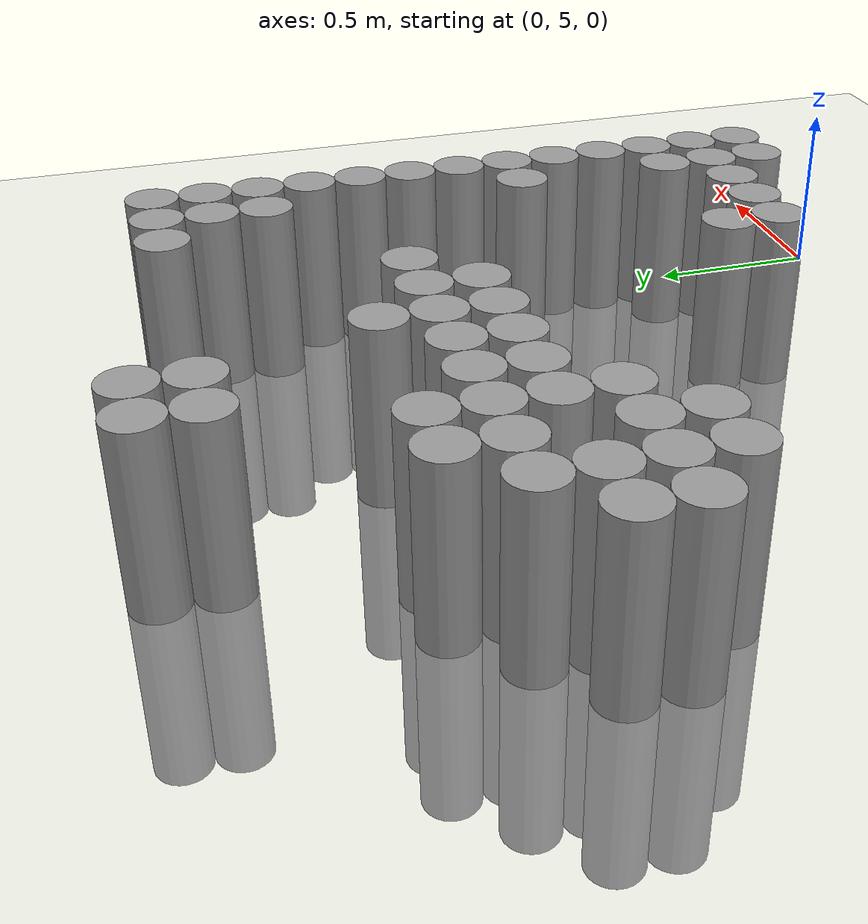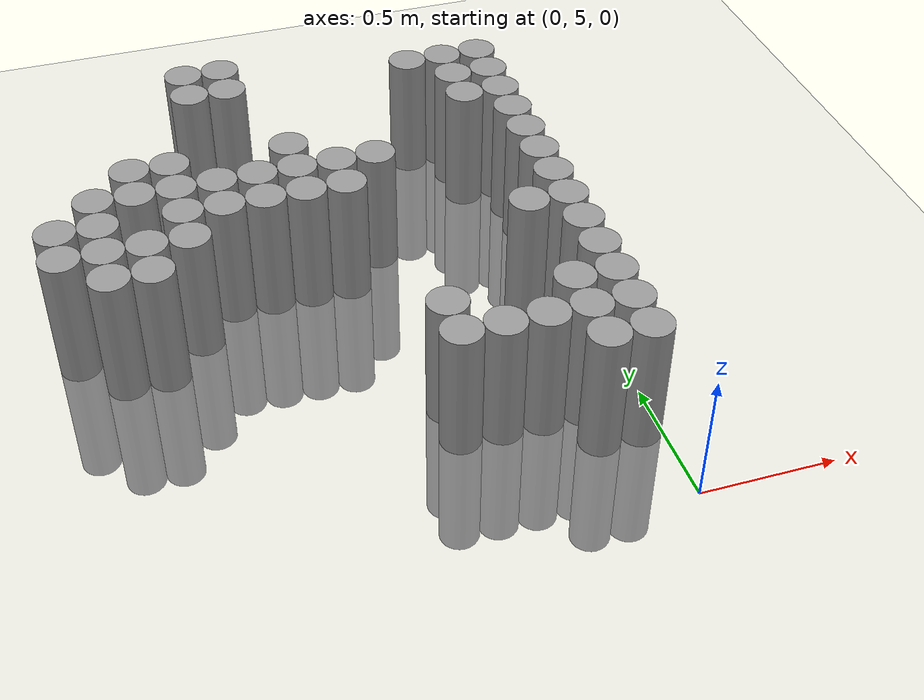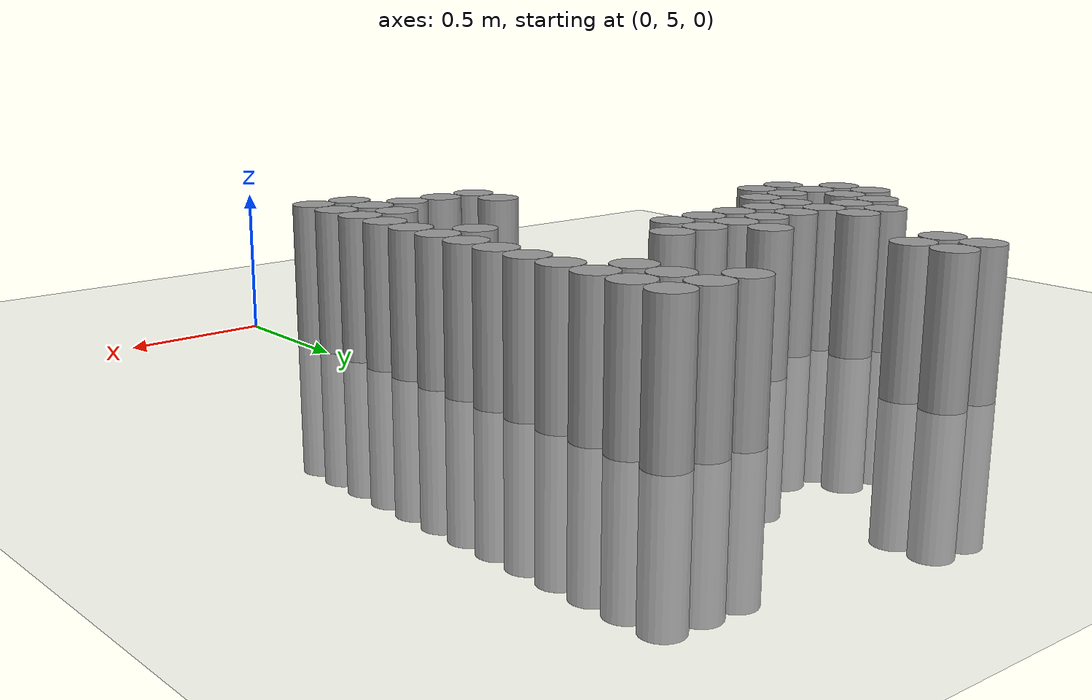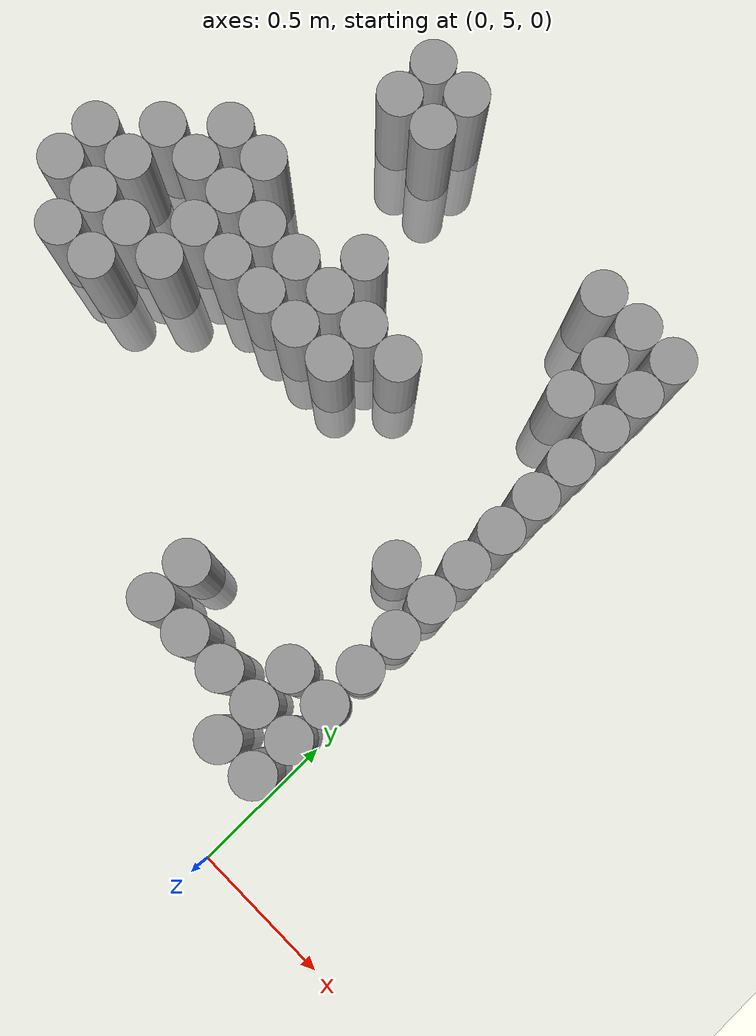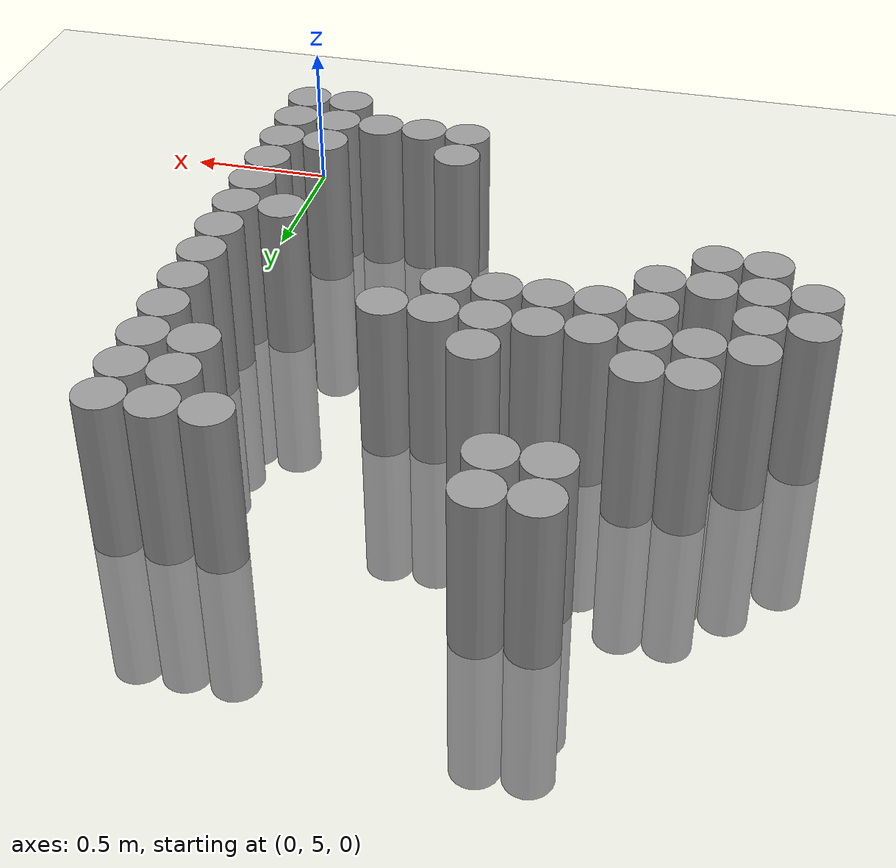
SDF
<sdf version="1.6">
 <world name="default">
  <model name="ground_plane">
   <static>1</static>
   <link name="link">
    <collision name="collision">
     <geometry><plane><normal>0 0 1</normal><size>100 100</size></plane></geometry>
     <surface><friction><ode><mu>100</mu><mu2>50</mu2></ode></friction></surface>
    </collision>
    <visual name="visual">
     <cast_shadows>0</cast_shadows>
     <geometry><plane><normal>0 0 1</normal><size>100 100</size></plane></geometry>
     <material>
      <script><uri>file://media/materials/scripts/gazebo.material</uri><name>Gazebo/Grey</name></script>
     </material>
    </visual>
   </link>
  </model>
  <model name="unit_cylinder_159">
   <pose>-1.875000 6.225000 0.000000 0.000000 0.000000 0.000000</pose>
   <link name="link">
    <inertial>
     <mass>1</mass>
     <inertia><ixx>0.145833</ixx><ixy>0</ixy><ixz>0</ixz><iyy>0.145833</iyy><iyz>0</iyz><izz>0.125</izz></inertia>
    </inertial>
    <collision name="collision">
     <geometry><cylinder><radius>0.075000</radius><length>1</length></cylinder></geometry>
    </collision>
    <visual name="visual">
     <geometry><cylinder><radius>0.075000</radius><length>1</length></cylinder></geometry>
     <material>
      <script><name>Gazebo/Grey</name><uri>file://media/materials/scripts/gazebo.material</uri></script>
     </material>
    </visual>
   </link>
  </model>
  <model name="unit_cylinder_160">
   <pose>-1.875000 6.375000 0.000000 0.000000 0.000000 0.000000</pose>
   <link name="link">
    <inertial>
     <mass>1</mass>
     <inertia><ixx>0.145833</ixx><ixy>0</ixy><ixz>0</ixz><iyy>0.145833</iyy><iyz>0</iyz><izz>0.125</izz></inertia>
    </inertial>
    <collision name="collision">
     <geometry><cylinder><radius>0.075000</radius><length>1</length></cylinder></geometry>
    </collision>
    <visual name="visual">
     <geometry><cylinder><radius>0.075000</radius><length>1</length></cylinder></geometry>
     <material>
      <script><name>Gazebo/Grey</name><uri>file://media/materials/scripts/gazebo.material</uri></script>
     </material>
    </visual>
   </link>
  </model>
  <model name="unit_cylinder_162">
   <pose>-1.725000 6.075000 0.000000 0.000000 0.000000 0.000000</pose>
   <link name="link">
    <inertial>
     <mass>1</mass>
     <inertia><ixx>0.145833</ixx><ixy>0</ixy><ixz>0</ixz><iyy>0.145833</iyy><iyz>0</iyz><izz>0.125</izz></inertia>
    </inertial>
    <collision name="collision">
     <geometry><cylinder><radius>0.075000</radius><length>1</length></cylinder></geometry>
    </collision>
    <visual name="visual">
     <geometry><cylinder><radius>0.075000</radius><length>1</length></cylinder></geometry>
     <material>
      <script><name>Gazebo/Grey</name><uri>file://media/materials/scripts/gazebo.material</uri></script>
     </material>
    </visual>
   </link>
  </model>
  <model name="unit_cylinder_163">
   <pose>-1.725000 6.225000 0.000000 0.000000 0.000000 0.000000</pose>
   <link name="link">
    <inertial>
     <mass>1</mass>
     <inertia><ixx>0.145833</ixx><ixy>0</ixy><ixz>0</ixz><iyy>0.145833</iyy><iyz>0</iyz><izz>0.125</izz></inertia>
    </inertial>
    <collision name="collision">
     <geometry><cylinder><radius>0.075000</radius><length>1</length></cylinder></geometry>
    </collision>
    <visual name="visual">
     <geometry><cylinder><radius>0.075000</radius><length>1</length></cylinder></geometry>
     <material>
      <script><name>Gazebo/Grey</name><uri>file://media/materials/scripts/gazebo.material</uri></script>
     </material>
    </visual>
   </link>
  </model>
  <model name="unit_cylinder_164">
   <pose>-1.725000 6.375000 0.000000 0.000000 0.000000 0.000000</pose>
   <link name="link">
    <inertial>
     <mass>1</mass>
     <inertia><ixx>0.145833</ixx><ixy>0</ixy><ixz>0</ixz><iyy>0.145833</iyy><iyz>0</iyz><izz>0.125</izz></inertia>
    </inertial>
    <collision name="collision">
     <geometry><cylinder><radius>0.075000</radius><length>1</length></cylinder></geometry>
    </collision>
    <visual name="visual">
     <geometry><cylinder><radius>0.075000</radius><length>1</length></cylinder></geometry>
     <material>
      <script><name>Gazebo/Grey</name><uri>file://media/materials/scripts/gazebo.material</uri></script>
     </material>
    </visual>
   </link>
  </model>
  <model name="unit_cylinder_165">
   <pose>-1.725000 6.525000 0.000000 0.000000 0.000000 0.000000</pose>
   <link name="link">
    <inertial>
     <mass>1</mass>
     <inertia><ixx>0.145833</ixx><ixy>0</ixy><ixz>0</ixz><iyy>0.145833</iyy><iyz>0</iyz><izz>0.125</izz></inertia>
    </inertial>
    <collision name="collision">
     <geometry><cylinder><radius>0.075000</radius><length>1</length></cylinder></geometry>
    </collision>
    <visual name="visual">
     <geometry><cylinder><radius>0.075000</radius><length>1</length></cylinder></geometry>
     <material>
      <script><name>Gazebo/Grey</name><uri>file://media/materials/scripts/gazebo.material</uri></script>
     </material>
    </visual>
   </link>
  </model>
  <model name="unit_cylinder_166">
   <pose>-1.575000 6.075000 0.000000 0.000000 0.000000 0.000000</pose>
   <link name="link">
    <inertial>
     <mass>1</mass>
     <inertia><ixx>0.145833</ixx><ixy>0</ixy><ixz>0</ixz><iyy>0.145833</iyy><iyz>0</iyz><izz>0.125</izz></inertia>
    </inertial>
    <collision name="collision">
     <geometry><cylinder><radius>0.075000</radius><length>1</length></cylinder></geometry>
    </collision>
    <visual name="visual">
     <geometry><cylinder><radius>0.075000</radius><length>1</length></cylinder></geometry>
     <material>
      <script><name>Gazebo/Grey</name><uri>file://media/materials/scripts/gazebo.material</uri></script>
     </material>
    </visual>
   </link>
  </model>
  <model name="unit_cylinder_167">
   <pose>-1.575000 6.225000 0.000000 0.000000 0.000000 0.000000</pose>
   <link name="link">
    <inertial>
     <mass>1</mass>
     <inertia><ixx>0.145833</ixx><ixy>0</ixy><ixz>0</ixz><iyy>0.145833</iyy><iyz>0</iyz><izz>0.125</izz></inertia>
    </inertial>
    <collision name="collision">
     <geometry><cylinder><radius>0.075000</radius><length>1</length></cylinder></geometry>
    </collision>
    <visual name="visual">
     <geometry><cylinder><radius>0.075000</radius><length>1</length></cylinder></geometry>
     <material>
      <script><name>Gazebo/Grey</name><uri>file://media/materials/scripts/gazebo.material</uri></script>
     </material>
    </visual>
   </link>
  </model>
  <model name="unit_cylinder_168">
   <pose>-1.575000 6.525000 0.000000 0.000000 0.000000 0.000000</pose>
   <link name="link">
    <inertial>
     <mass>1</mass>
     <inertia><ixx>0.145833</ixx><ixy>0</ixy><ixz>0</ixz><iyy>0.145833</iyy><iyz>0</iyz><izz>0.125</izz></inertia>
    </inertial>
    <collision name="collision">
     <geometry><cylinder><radius>0.075000</radius><length>1</length></cylinder></geometry>
    </collision>
    <visual name="visual">
     <geometry><cylinder><radius>0.075000</radius><length>1</length></cylinder></geometry>
     <material>
      <script><name>Gazebo/Grey</name><uri>file://media/materials/scripts/gazebo.material</uri></script>
     </material>
    </visual>
   </link>
  </model>
  <model name="unit_cylinder_169">
   <pose>-1.575000 6.675000 0.000000 0.000000 0.000000 0.000000</pose>
   <link name="link">
    <inertial>
     <mass>1</mass>
     <inertia><ixx>0.145833</ixx><ixy>0</ixy><ixz>0</ixz><iyy>0.145833</iyy><iyz>0</iyz><izz>0.125</izz></inertia>
    </inertial>
    <collision name="collision">
     <geometry><cylinder><radius>0.075000</radius><length>1</length></cylinder></geometry>
    </collision>
    <visual name="visual">
     <geometry><cylinder><radius>0.075000</radius><length>1</length></cylinder></geometry>
     <material>
      <script><name>Gazebo/Grey</name><uri>file://media/materials/scripts/gazebo.material</uri></script>
     </material>
    </visual>
   </link>
  </model>
  <model name="unit_cylinder_171">
   <pose>-1.425000 6.225000 0.000000 0.000000 0.000000 0.000000</pose>
   <link name="link">
    <inertial>
     <mass>1</mass>
     <inertia><ixx>0.145833</ixx><ixy>0</ixy><ixz>0</ixz><iyy>0.145833</iyy><iyz>0</iyz><izz>0.125</izz></inertia>
    </inertial>
    <collision name="collision">
     <geometry><cylinder><radius>0.075000</radius><length>1</length></cylinder></geometry>
    </collision>
    <visual name="visual">
     <geometry><cylinder><radius>0.075000</radius><length>1</length></cylinder></geometry>
     <material>
      <script><name>Gazebo/Grey</name><uri>file://media/materials/scripts/gazebo.material</uri></script>
     </material>
    </visual>
   </link>
  </model>
  <model name="unit_cylinder_172">
   <pose>-1.425000 6.375000 0.000000 0.000000 0.000000 0.000000</pose>
   <link name="link">
    <inertial>
     <mass>1</mass>
     <inertia><ixx>0.145833</ixx><ixy>0</ixy><ixz>0</ixz><iyy>0.145833</iyy><iyz>0</iyz><izz>0.125</izz></inertia>
    </inertial>
    <collision name="collision">
     <geometry><cylinder><radius>0.075000</radius><length>1</length></cylinder></geometry>
    </collision>
    <visual name="visual">
     <geometry><cylinder><radius>0.075000</radius><length>1</length></cylinder></geometry>
     <material>
      <script><name>Gazebo/Grey</name><uri>file://media/materials/scripts/gazebo.material</uri></script>
     </material>
    </visual>
   </link>
  </model>
  <model name="unit_cylinder_173">
   <pose>-1.425000 6.525000 0.000000 0.000000 0.000000 0.000000</pose>
   <link name="link">
    <inertial>
     <mass>1</mass>
     <inertia><ixx>0.145833</ixx><ixy>0</ixy><ixz>0</ixz><iyy>0.145833</iyy><iyz>0</iyz><izz>0.125</izz></inertia>
    </inertial>
    <collision name="collision">
     <geometry><cylinder><radius>0.075000</radius><length>1</length></cylinder></geometry>
    </collision>
    <visual name="visual">
     <geometry><cylinder><radius>0.075000</radius><length>1</length></cylinder></geometry>
     <material>
      <script><name>Gazebo/Grey</name><uri>file://media/materials/scripts/gazebo.material</uri></script>
     </material>
    </visual>
   </link>
  </model>
  <model name="unit_cylinder_174">
   <pose>-1.425000 6.675000 0.000000 0.000000 0.000000 0.000000</pose>
   <link name="link">
    <inertial>
     <mass>1</mass>
     <inertia><ixx>0.145833</ixx><ixy>0</ixy><ixz>0</ixz><iyy>0.145833</iyy><iyz>0</iyz><izz>0.125</izz></inertia>
    </inertial>
    <collision name="collision">
     <geometry><cylinder><radius>0.075000</radius><length>1</length></cylinder></geometry>
    </collision>
    <visual name="visual">
     <geometry><cylinder><radius>0.075000</radius><length>1</length></cylinder></geometry>
     <material>
      <script><name>Gazebo/Grey</name><uri>file://media/materials/scripts/gazebo.material</uri></script>
     </material>
    </visual>
   </link>
  </model>
  <model name="unit_cylinder_179">
   <pose>-1.275000 6.375000 0.000000 0.000000 0.000000 0.000000</pose>
   <link name="link">
    <inertial>
     <mass>1</mass>
     <inertia><ixx>0.145833</ixx><ixy>0</ixy><ixz>0</ixz><iyy>0.145833</iyy><iyz>0</iyz><izz>0.125</izz></inertia>
    </inertial>
    <collision name="collision">
     <geometry><cylinder><radius>0.075000</radius><length>1</length></cylinder></geometry>
    </collision>
    <visual name="visual">
     <geometry><cylinder><radius>0.075000</radius><length>1</length></cylinder></geometry>
     <material>
      <script><name>Gazebo/Grey</name><uri>file://media/materials/scripts/gazebo.material</uri></script>
     </material>
    </visual>
   </link>
  </model>
  <model name="unit_cylinder_180">
   <pose>-1.275000 6.525000 0.000000 0.000000 0.000000 0.000000</pose>
   <link name="link">
    <inertial>
     <mass>1</mass>
     <inertia><ixx>0.145833</ixx><ixy>0</ixy><ixz>0</ixz><iyy>0.145833</iyy><iyz>0</iyz><izz>0.125</izz></inertia>
    </inertial>
    <collision name="collision">
     <geometry><cylinder><radius>0.075000</radius><length>1</length></cylinder></geometry>
    </collision>
    <visual name="visual">
     <geometry><cylinder><radius>0.075000</radius><length>1</length></cylinder></geometry>
     <material>
      <script><name>Gazebo/Grey</name><uri>file://media/materials/scripts/gazebo.material</uri></script>
     </material>
    </visual>
   </link>
  </model>
  <model name="unit_cylinder_181">
   <pose>-1.275000 7.125000 0.000000 0.000000 0.000000 0.000000</pose>
   <link name="link">
    <inertial>
     <mass>1</mass>
     <inertia><ixx>0.145833</ixx><ixy>0</ixy><ixz>0</ixz><iyy>0.145833</iyy><iyz>0</iyz><izz>0.125</izz></inertia>
    </inertial>
    <collision name="collision">
     <geometry><cylinder><radius>0.075000</radius><length>1</length></cylinder></geometry>
    </collision>
    <visual name="visual">
     <geometry><cylinder><radius>0.075000</radius><length>1</length></cylinder></geometry>
     <material>
      <script><name>Gazebo/Grey</name><uri>file://media/materials/scripts/gazebo.material</uri></script>
     </material>
    </visual>
   </link>
  </model>
  <model name="unit_cylinder_182">
   <pose>-1.275000 7.275000 0.000000 0.000000 0.000000 0.000000</pose>
   <link name="link">
    <inertial>
     <mass>1</mass>
     <inertia><ixx>0.145833</ixx><ixy>0</ixy><ixz>0</ixz><iyy>0.145833</iyy><iyz>0</iyz><izz>0.125</izz></inertia>
    </inertial>
    <collision name="collision">
     <geometry><cylinder><radius>0.075000</radius><length>1</length></cylinder></geometry>
    </collision>
    <visual name="visual">
     <geometry><cylinder><radius>0.075000</radius><length>1</length></cylinder></geometry>
     <material>
      <script><name>Gazebo/Grey</name><uri>file://media/materials/scripts/gazebo.material</uri></script>
     </material>
    </visual>
   </link>
  </model>
  <model name="unit_cylinder_186">
   <pose>-1.125000 6.375000 0.000000 0.000000 0.000000 0.000000</pose>
   <link name="link">
    <inertial>
     <mass>1</mass>
     <inertia><ixx>0.145833</ixx><ixy>0</ixy><ixz>0</ixz><iyy>0.145833</iyy><iyz>0</iyz><izz>0.125</izz></inertia>
    </inertial>
    <collision name="collision">
     <geometry><cylinder><radius>0.075000</radius><length>1</length></cylinder></geometry>
    </collision>
    <visual name="visual">
     <geometry><cylinder><radius>0.075000</radius><length>1</length></cylinder></geometry>
     <material>
      <script><name>Gazebo/Grey</name><uri>file://media/materials/scripts/gazebo.material</uri></script>
     </material>
    </visual>
   </link>
  </model>
  <model name="unit_cylinder_187">
   <pose>-1.125000 6.525000 0.000000 0.000000 0.000000 0.000000</pose>
   <link name="link">
    <inertial>
     <mass>1</mass>
     <inertia><ixx>0.145833</ixx><ixy>0</ixy><ixz>0</ixz><iyy>0.145833</iyy><iyz>0</iyz><izz>0.125</izz></inertia>
    </inertial>
    <collision name="collision">
     <geometry><cylinder><radius>0.075000</radius><length>1</length></cylinder></geometry>
    </collision>
    <visual name="visual">
     <geometry><cylinder><radius>0.075000</radius><length>1</length></cylinder></geometry>
     <material>
      <script><name>Gazebo/Grey</name><uri>file://media/materials/scripts/gazebo.material</uri></script>
     </material>
    </visual>
   </link>
  </model>
  <model name="unit_cylinder_188">
   <pose>-1.125000 7.125000 0.000000 0.000000 0.000000 0.000000</pose>
   <link name="link">
    <inertial>
     <mass>1</mass>
     <inertia><ixx>0.145833</ixx><ixy>0</ixy><ixz>0</ixz><iyy>0.145833</iyy><iyz>0</iyz><izz>0.125</izz></inertia>
    </inertial>
    <collision name="collision">
     <geometry><cylinder><radius>0.075000</radius><length>1</length></cylinder></geometry>
    </collision>
    <visual name="visual">
     <geometry><cylinder><radius>0.075000</radius><length>1</length></cylinder></geometry>
     <material>
      <script><name>Gazebo/Grey</name><uri>file://media/materials/scripts/gazebo.material</uri></script>
     </material>
    </visual>
   </link>
  </model>
  <model name="unit_cylinder_189">
   <pose>-1.125000 7.275000 0.000000 0.000000 0.000000 0.000000</pose>
   <link name="link">
    <inertial>
     <mass>1</mass>
     <inertia><ixx>0.145833</ixx><ixy>0</ixy><ixz>0</ixz><iyy>0.145833</iyy><iyz>0</iyz><izz>0.125</izz></inertia>
    </inertial>
    <collision name="collision">
     <geometry><cylinder><radius>0.075000</radius><length>1</length></cylinder></geometry>
    </collision>
    <visual name="visual">
     <geometry><cylinder><radius>0.075000</radius><length>1</length></cylinder></geometry>
     <material>
      <script><name>Gazebo/Grey</name><uri>file://media/materials/scripts/gazebo.material</uri></script>
     </material>
    </visual>
   </link>
  </model>
  <model name="unit_cylinder_193">
   <pose>-0.975000 6.375000 0.000000 0.000000 0.000000 0.000000</pose>
   <link name="link">
    <inertial>
     <mass>1</mass>
     <inertia><ixx>0.145833</ixx><ixy>0</ixy><ixz>0</ixz><iyy>0.145833</iyy><iyz>0</iyz><izz>0.125</izz></inertia>
    </inertial>
    <collision name="collision">
     <geometry><cylinder><radius>0.075000</radius><length>1</length></cylinder></geometry>
    </collision>
    <visual name="visual">
     <geometry><cylinder><radius>0.075000</radius><length>1</length></cylinder></geometry>
     <material>
      <script><name>Gazebo/Grey</name><uri>file://media/materials/scripts/gazebo.material</uri></script>
     </material>
    </visual>
   </link>
  </model>
  <model name="unit_cylinder_194">
   <pose>-0.975000 6.525000 0.000000 0.000000 0.000000 0.000000</pose>
   <link name="link">
    <inertial>
     <mass>1</mass>
     <inertia><ixx>0.145833</ixx><ixy>0</ixy><ixz>0</ixz><iyy>0.145833</iyy><iyz>0</iyz><izz>0.125</izz></inertia>
    </inertial>
    <collision name="collision">
     <geometry><cylinder><radius>0.075000</radius><length>1</length></cylinder></geometry>
    </collision>
    <visual name="visual">
     <geometry><cylinder><radius>0.075000</radius><length>1</length></cylinder></geometry>
     <material>
      <script><name>Gazebo/Grey</name><uri>file://media/materials/scripts/gazebo.material</uri></script>
     </material>
    </visual>
   </link>
  </model>
  <model name="unit_cylinder_195">
   <pose>-0.975000 6.675000 0.000000 0.000000 0.000000 0.000000</pose>
   <link name="link">
    <inertial>
     <mass>1</mass>
     <inertia><ixx>0.145833</ixx><ixy>0</ixy><ixz>0</ixz><iyy>0.145833</iyy><iyz>0</iyz><izz>0.125</izz></inertia>
    </inertial>
    <collision name="collision">
     <geometry><cylinder><radius>0.075000</radius><length>1</length></cylinder></geometry>
    </collision>
    <visual name="visual">
     <geometry><cylinder><radius>0.075000</radius><length>1</length></cylinder></geometry>
     <material>
      <script><name>Gazebo/Grey</name><uri>file://media/materials/scripts/gazebo.material</uri></script>
     </material>
    </visual>
   </link>
  </model>
  <model name="unit_cylinder_200">
   <pose>-0.825000 6.375000 0.000000 0.000000 0.000000 0.000000</pose>
   <link name="link">
    <inertial>
     <mass>1</mass>
     <inertia><ixx>0.145833</ixx><ixy>0</ixy><ixz>0</ixz><iyy>0.145833</iyy><iyz>0</iyz><izz>0.125</izz></inertia>
    </inertial>
    <collision name="collision">
     <geometry><cylinder><radius>0.075000</radius><length>1</length></cylinder></geometry>
    </collision>
    <visual name="visual">
     <geometry><cylinder><radius>0.075000</radius><length>1</length></cylinder></geometry>
     <material>
      <script><name>Gazebo/Grey</name><uri>file://media/materials/scripts/gazebo.material</uri></script>
     </material>
    </visual>
   </link>
  </model>
  <model name="unit_cylinder_201">
   <pose>-0.825000 6.525000 0.000000 0.000000 0.000000 0.000000</pose>
   <link name="link">
    <inertial>
     <mass>1</mass>
     <inertia><ixx>0.145833</ixx><ixy>0</ixy><ixz>0</ixz><iyy>0.145833</iyy><iyz>0</iyz><izz>0.125</izz></inertia>
    </inertial>
    <collision name="collision">
     <geometry><cylinder><radius>0.075000</radius><length>1</length></cylinder></geometry>
    </collision>
    <visual name="visual">
     <geometry><cylinder><radius>0.075000</radius><length>1</length></cylinder></geometry>
     <material>
      <script><name>Gazebo/Grey</name><uri>file://media/materials/scripts/gazebo.material</uri></script>
     </material>
    </visual>
   </link>
  </model>
  <model name="unit_cylinder_206">
   <pose>-0.675000 5.475000 0.000000 0.000000 0.000000 0.000000</pose>
   <link name="link">
    <inertial>
     <mass>1</mass>
     <inertia><ixx>0.145833</ixx><ixy>0</ixy><ixz>0</ixz><iyy>0.145833</iyy><iyz>0</iyz><izz>0.125</izz></inertia>
    </inertial>
    <collision name="collision">
     <geometry><cylinder><radius>0.075000</radius><length>1</length></cylinder></geometry>
    </collision>
    <visual name="visual">
     <geometry><cylinder><radius>0.075000</radius><length>1</length></cylinder></geometry>
     <material>
      <script><name>Gazebo/Grey</name><uri>file://media/materials/scripts/gazebo.material</uri></script>
     </material>
    </visual>
   </link>
  </model>
  <model name="unit_cylinder_207">
   <pose>-0.675000 5.625000 0.000000 0.000000 0.000000 0.000000</pose>
   <link name="link">
    <inertial>
     <mass>1</mass>
     <inertia><ixx>0.145833</ixx><ixy>0</ixy><ixz>0</ixz><iyy>0.145833</iyy><iyz>0</iyz><izz>0.125</izz></inertia>
    </inertial>
    <collision name="collision">
     <geometry><cylinder><radius>0.075000</radius><length>1</length></cylinder></geometry>
    </collision>
    <visual name="visual">
     <geometry><cylinder><radius>0.075000</radius><length>1</length></cylinder></geometry>
     <material>
      <script><name>Gazebo/Grey</name><uri>file://media/materials/scripts/gazebo.material</uri></script>
     </material>
    </visual>
   </link>
  </model>
  <model name="unit_cylinder_208">
   <pose>-0.675000 6.525000 0.000000 0.000000 0.000000 0.000000</pose>
   <link name="link">
    <inertial>
     <mass>1</mass>
     <inertia><ixx>0.145833</ixx><ixy>0</ixy><ixz>0</ixz><iyy>0.145833</iyy><iyz>0</iyz><izz>0.125</izz></inertia>
    </inertial>
    <collision name="collision">
     <geometry><cylinder><radius>0.075000</radius><length>1</length></cylinder></geometry>
    </collision>
    <visual name="visual">
     <geometry><cylinder><radius>0.075000</radius><length>1</length></cylinder></geometry>
     <material>
      <script><name>Gazebo/Grey</name><uri>file://media/materials/scripts/gazebo.material</uri></script>
     </material>
    </visual>
   </link>
  </model>
  <model name="unit_cylinder_214">
   <pose>-0.525000 5.475000 0.000000 0.000000 0.000000 0.000000</pose>
   <link name="link">
    <inertial>
     <mass>1</mass>
     <inertia><ixx>0.145833</ixx><ixy>0</ixy><ixz>0</ixz><iyy>0.145833</iyy><iyz>0</iyz><izz>0.125</izz></inertia>
    </inertial>
    <collision name="collision">
     <geometry><cylinder><radius>0.075000</radius><length>1</length></cylinder></geometry>
    </collision>
    <visual name="visual">
     <geometry><cylinder><radius>0.075000</radius><length>1</length></cylinder></geometry>
     <material>
      <script><name>Gazebo/Grey</name><uri>file://media/materials/scripts/gazebo.material</uri></script>
     </material>
    </visual>
   </link>
  </model>
  <model name="unit_cylinder_218">
   <pose>-0.375000 5.475000 0.000000 0.000000 0.000000 0.000000</pose>
   <link name="link">
    <inertial>
     <mass>1</mass>
     <inertia><ixx>0.145833</ixx><ixy>0</ixy><ixz>0</ixz><iyy>0.145833</iyy><iyz>0</iyz><izz>0.125</izz></inertia>
    </inertial>
    <collision name="collision">
     <geometry><cylinder><radius>0.075000</radius><length>1</length></cylinder></geometry>
    </collision>
    <visual name="visual">
     <geometry><cylinder><radius>0.075000</radius><length>1</length></cylinder></geometry>
     <material>
      <script><name>Gazebo/Grey</name><uri>file://media/materials/scripts/gazebo.material</uri></script>
     </material>
    </visual>
   </link>
  </model>
  <model name="unit_cylinder_219">
   <pose>-0.375000 7.125000 0.000000 0.000000 0.000000 0.000000</pose>
   <link name="link">
    <inertial>
     <mass>1</mass>
     <inertia><ixx>0.145833</ixx><ixy>0</ixy><ixz>0</ixz><iyy>0.145833</iyy><iyz>0</iyz><izz>0.125</izz></inertia>
    </inertial>
    <collision name="collision">
     <geometry><cylinder><radius>0.075000</radius><length>1</length></cylinder></geometry>
    </collision>
    <visual name="visual">
     <geometry><cylinder><radius>0.075000</radius><length>1</length></cylinder></geometry>
     <material>
      <script><name>Gazebo/Grey</name><uri>file://media/materials/scripts/gazebo.material</uri></script>
     </material>
    </visual>
   </link>
  </model>
  <model name="unit_cylinder_223">
   <pose>-0.225000 5.325000 0.000000 0.000000 0.000000 0.000000</pose>
   <link name="link">
    <inertial>
     <mass>1</mass>
     <inertia><ixx>0.145833</ixx><ixy>0</ixy><ixz>0</ixz><iyy>0.145833</iyy><iyz>0</iyz><izz>0.125</izz></inertia>
    </inertial>
    <collision name="collision">
     <geometry><cylinder><radius>0.075000</radius><length>1</length></cylinder></geometry>
    </collision>
    <visual name="visual">
     <geometry><cylinder><radius>0.075000</radius><length>1</length></cylinder></geometry>
     <material>
      <script><name>Gazebo/Grey</name><uri>file://media/materials/scripts/gazebo.material</uri></script>
     </material>
    </visual>
   </link>
  </model>
  <model name="unit_cylinder_224">
   <pose>-0.225000 5.475000 0.000000 0.000000 0.000000 0.000000</pose>
   <link name="link">
    <inertial>
     <mass>1</mass>
     <inertia><ixx>0.145833</ixx><ixy>0</ixy><ixz>0</ixz><iyy>0.145833</iyy><iyz>0</iyz><izz>0.125</izz></inertia>
    </inertial>
    <collision name="collision">
     <geometry><cylinder><radius>0.075000</radius><length>1</length></cylinder></geometry>
    </collision>
    <visual name="visual">
     <geometry><cylinder><radius>0.075000</radius><length>1</length></cylinder></geometry>
     <material>
      <script><name>Gazebo/Grey</name><uri>file://media/materials/scripts/gazebo.material</uri></script>
     </material>
    </visual>
   </link>
  </model>
  <model name="unit_cylinder_225">
   <pose>-0.225000 5.625000 0.000000 0.000000 0.000000 0.000000</pose>
   <link name="link">
    <inertial>
     <mass>1</mass>
     <inertia><ixx>0.145833</ixx><ixy>0</ixy><ixz>0</ixz><iyy>0.145833</iyy><iyz>0</iyz><izz>0.125</izz></inertia>
    </inertial>
    <collision name="collision">
     <geometry><cylinder><radius>0.075000</radius><length>1</length></cylinder></geometry>
    </collision>
    <visual name="visual">
     <geometry><cylinder><radius>0.075000</radius><length>1</length></cylinder></geometry>
     <material>
      <script><name>Gazebo/Grey</name><uri>file://media/materials/scripts/gazebo.material</uri></script>
     </material>
    </visual>
   </link>
  </model>
  <model name="unit_cylinder_226">
   <pose>-0.225000 6.075000 0.000000 0.000000 0.000000 0.000000</pose>
   <link name="link">
    <inertial>
     <mass>1</mass>
     <inertia><ixx>0.145833</ixx><ixy>0</ixy><ixz>0</ixz><iyy>0.145833</iyy><iyz>0</iyz><izz>0.125</izz></inertia>
    </inertial>
    <collision name="collision">
     <geometry><cylinder><radius>0.075000</radius><length>1</length></cylinder></geometry>
    </collision>
    <visual name="visual">
     <geometry><cylinder><radius>0.075000</radius><length>1</length></cylinder></geometry>
     <material>
      <script><name>Gazebo/Grey</name><uri>file://media/materials/scripts/gazebo.material</uri></script>
     </material>
    </visual>
   </link>
  </model>
  <model name="unit_cylinder_227">
   <pose>-0.225000 6.825000 0.000000 0.000000 0.000000 0.000000</pose>
   <link name="link">
    <inertial>
     <mass>1</mass>
     <inertia><ixx>0.145833</ixx><ixy>0</ixy><ixz>0</ixz><iyy>0.145833</iyy><iyz>0</iyz><izz>0.125</izz></inertia>
    </inertial>
    <collision name="collision">
     <geometry><cylinder><radius>0.075000</radius><length>1</length></cylinder></geometry>
    </collision>
    <visual name="visual">
     <geometry><cylinder><radius>0.075000</radius><length>1</length></cylinder></geometry>
     <material>
      <script><name>Gazebo/Grey</name><uri>file://media/materials/scripts/gazebo.material</uri></script>
     </material>
    </visual>
   </link>
  </model>
  <model name="unit_cylinder_228">
   <pose>-0.225000 6.975000 0.000000 0.000000 0.000000 0.000000</pose>
   <link name="link">
    <inertial>
     <mass>1</mass>
     <inertia><ixx>0.145833</ixx><ixy>0</ixy><ixz>0</ixz><iyy>0.145833</iyy><iyz>0</iyz><izz>0.125</izz></inertia>
    </inertial>
    <collision name="collision">
     <geometry><cylinder><radius>0.075000</radius><length>1</length></cylinder></geometry>
    </collision>
    <visual name="visual">
     <geometry><cylinder><radius>0.075000</radius><length>1</length></cylinder></geometry>
     <material>
      <script><name>Gazebo/Grey</name><uri>file://media/materials/scripts/gazebo.material</uri></script>
     </material>
    </visual>
   </link>
  </model>
  <model name="unit_cylinder_229">
   <pose>-0.225000 7.125000 0.000000 0.000000 0.000000 0.000000</pose>
   <link name="link">
    <inertial>
     <mass>1</mass>
     <inertia><ixx>0.145833</ixx><ixy>0</ixy><ixz>0</ixz><iyy>0.145833</iyy><iyz>0</iyz><izz>0.125</izz></inertia>
    </inertial>
    <collision name="collision">
     <geometry><cylinder><radius>0.075000</radius><length>1</length></cylinder></geometry>
    </collision>
    <visual name="visual">
     <geometry><cylinder><radius>0.075000</radius><length>1</length></cylinder></geometry>
     <material>
      <script><name>Gazebo/Grey</name><uri>file://media/materials/scripts/gazebo.material</uri></script>
     </material>
    </visual>
   </link>
  </model>
  <model name="unit_cylinder_240">
   <pose>-0.075000 5.325000 0.000000 0.000000 0.000000 0.000000</pose>
   <link name="link">
    <inertial>
     <mass>1</mass>
     <inertia><ixx>0.145833</ixx><ixy>0</ixy><ixz>0</ixz><iyy>0.145833</iyy><iyz>0</iyz><izz>0.125</izz></inertia>
    </inertial>
    <collision name="collision">
     <geometry><cylinder><radius>0.075000</radius><length>1</length></cylinder></geometry>
    </collision>
    <visual name="visual">
     <geometry><cylinder><radius>0.075000</radius><length>1</length></cylinder></geometry>
     <material>
      <script><name>Gazebo/Grey</name><uri>file://media/materials/scripts/gazebo.material</uri></script>
     </material>
    </visual>
   </link>
  </model>
  <model name="unit_cylinder_241">
   <pose>-0.075000 5.475000 0.000000 0.000000 0.000000 0.000000</pose>
   <link name="link">
    <inertial>
     <mass>1</mass>
     <inertia><ixx>0.145833</ixx><ixy>0</ixy><ixz>0</ixz><iyy>0.145833</iyy><iyz>0</iyz><izz>0.125</izz></inertia>
    </inertial>
    <collision name="collision">
     <geometry><cylinder><radius>0.075000</radius><length>1</length></cylinder></geometry>
    </collision>
    <visual name="visual">
     <geometry><cylinder><radius>0.075000</radius><length>1</length></cylinder></geometry>
     <material>
      <script><name>Gazebo/Grey</name><uri>file://media/materials/scripts/gazebo.material</uri></script>
     </material>
    </visual>
   </link>
  </model>
  <model name="unit_cylinder_242">
   <pose>-0.075000 5.625000 0.000000 0.000000 0.000000 0.000000</pose>
   <link name="link">
    <inertial>
     <mass>1</mass>
     <inertia><ixx>0.145833</ixx><ixy>0</ixy><ixz>0</ixz><iyy>0.145833</iyy><iyz>0</iyz><izz>0.125</izz></inertia>
    </inertial>
    <collision name="collision">
     <geometry><cylinder><radius>0.075000</radius><length>1</length></cylinder></geometry>
    </collision>
    <visual name="visual">
     <geometry><cylinder><radius>0.075000</radius><length>1</length></cylinder></geometry>
     <material>
      <script><name>Gazebo/Grey</name><uri>file://media/materials/scripts/gazebo.material</uri></script>
     </material>
    </visual>
   </link>
  </model>
  <model name="unit_cylinder_243">
   <pose>-0.075000 5.775000 0.000000 0.000000 0.000000 0.000000</pose>
   <link name="link">
    <inertial>
     <mass>1</mass>
     <inertia><ixx>0.145833</ixx><ixy>0</ixy><ixz>0</ixz><iyy>0.145833</iyy><iyz>0</iyz><izz>0.125</izz></inertia>
    </inertial>
    <collision name="collision">
     <geometry><cylinder><radius>0.075000</radius><length>1</length></cylinder></geometry>
    </collision>
    <visual name="visual">
     <geometry><cylinder><radius>0.075000</radius><length>1</length></cylinder></geometry>
     <material>
      <script><name>Gazebo/Grey</name><uri>file://media/materials/scripts/gazebo.material</uri></script>
     </material>
    </visual>
   </link>
  </model>
  <model name="unit_cylinder_244">
   <pose>-0.075000 5.925000 0.000000 0.000000 0.000000 0.000000</pose>
   <link name="link">
    <inertial>
     <mass>1</mass>
     <inertia><ixx>0.145833</ixx><ixy>0</ixy><ixz>0</ixz><iyy>0.145833</iyy><iyz>0</iyz><izz>0.125</izz></inertia>
    </inertial>
    <collision name="collision">
     <geometry><cylinder><radius>0.075000</radius><length>1</length></cylinder></geometry>
    </collision>
    <visual name="visual">
     <geometry><cylinder><radius>0.075000</radius><length>1</length></cylinder></geometry>
     <material>
      <script><name>Gazebo/Grey</name><uri>file://media/materials/scripts/gazebo.material</uri></script>
     </material>
    </visual>
   </link>
  </model>
  <model name="unit_cylinder_245">
   <pose>-0.075000 6.075000 0.000000 0.000000 0.000000 0.000000</pose>
   <link name="link">
    <inertial>
     <mass>1</mass>
     <inertia><ixx>0.145833</ixx><ixy>0</ixy><ixz>0</ixz><iyy>0.145833</iyy><iyz>0</iyz><izz>0.125</izz></inertia>
    </inertial>
    <collision name="collision">
     <geometry><cylinder><radius>0.075000</radius><length>1</length></cylinder></geometry>
    </collision>
    <visual name="visual">
     <geometry><cylinder><radius>0.075000</radius><length>1</length></cylinder></geometry>
     <material>
      <script><name>Gazebo/Grey</name><uri>file://media/materials/scripts/gazebo.material</uri></script>
     </material>
    </visual>
   </link>
  </model>
  <model name="unit_cylinder_246">
   <pose>-0.075000 6.225000 0.000000 0.000000 0.000000 0.000000</pose>
   <link name="link">
    <inertial>
     <mass>1</mass>
     <inertia><ixx>0.145833</ixx><ixy>0</ixy><ixz>0</ixz><iyy>0.145833</iyy><iyz>0</iyz><izz>0.125</izz></inertia>
    </inertial>
    <collision name="collision">
     <geometry><cylinder><radius>0.075000</radius><length>1</length></cylinder></geometry>
    </collision>
    <visual name="visual">
     <geometry><cylinder><radius>0.075000</radius><length>1</length></cylinder></geometry>
     <material>
      <script><name>Gazebo/Grey</name><uri>file://media/materials/scripts/gazebo.material</uri></script>
     </material>
    </visual>
   </link>
  </model>
  <model name="unit_cylinder_247">
   <pose>-0.075000 6.375000 0.000000 0.000000 0.000000 0.000000</pose>
   <link name="link">
    <inertial>
     <mass>1</mass>
     <inertia><ixx>0.145833</ixx><ixy>0</ixy><ixz>0</ixz><iyy>0.145833</iyy><iyz>0</iyz><izz>0.125</izz></inertia>
    </inertial>
    <collision name="collision">
     <geometry><cylinder><radius>0.075000</radius><length>1</length></cylinder></geometry>
    </collision>
    <visual name="visual">
     <geometry><cylinder><radius>0.075000</radius><length>1</length></cylinder></geometry>
     <material>
      <script><name>Gazebo/Grey</name><uri>file://media/materials/scripts/gazebo.material</uri></script>
     </material>
    </visual>
   </link>
  </model>
  <model name="unit_cylinder_248">
   <pose>-0.075000 6.525000 0.000000 0.000000 0.000000 0.000000</pose>
   <link name="link">
    <inertial>
     <mass>1</mass>
     <inertia><ixx>0.145833</ixx><ixy>0</ixy><ixz>0</ixz><iyy>0.145833</iyy><iyz>0</iyz><izz>0.125</izz></inertia>
    </inertial>
    <collision name="collision">
     <geometry><cylinder><radius>0.075000</radius><length>1</length></cylinder></geometry>
    </collision>
    <visual name="visual">
     <geometry><cylinder><radius>0.075000</radius><length>1</length></cylinder></geometry>
     <material>
      <script><name>Gazebo/Grey</name><uri>file://media/materials/scripts/gazebo.material</uri></script>
     </material>
    </visual>
   </link>
  </model>
  <model name="unit_cylinder_249">
   <pose>-0.075000 6.675000 0.000000 0.000000 0.000000 0.000000</pose>
   <link name="link">
    <inertial>
     <mass>1</mass>
     <inertia><ixx>0.145833</ixx><ixy>0</ixy><ixz>0</ixz><iyy>0.145833</iyy><iyz>0</iyz><izz>0.125</izz></inertia>
    </inertial>
    <collision name="collision">
     <geometry><cylinder><radius>0.075000</radius><length>1</length></cylinder></geometry>
    </collision>
    <visual name="visual">
     <geometry><cylinder><radius>0.075000</radius><length>1</length></cylinder></geometry>
     <material>
      <script><name>Gazebo/Grey</name><uri>file://media/materials/scripts/gazebo.material</uri></script>
     </material>
    </visual>
   </link>
  </model>
  <model name="unit_cylinder_250">
   <pose>-0.075000 6.825000 0.000000 0.000000 0.000000 0.000000</pose>
   <link name="link">
    <inertial>
     <mass>1</mass>
     <inertia><ixx>0.145833</ixx><ixy>0</ixy><ixz>0</ixz><iyy>0.145833</iyy><iyz>0</iyz><izz>0.125</izz></inertia>
    </inertial>
    <collision name="collision">
     <geometry><cylinder><radius>0.075000</radius><length>1</length></cylinder></geometry>
    </collision>
    <visual name="visual">
     <geometry><cylinder><radius>0.075000</radius><length>1</length></cylinder></geometry>
     <material>
      <script><name>Gazebo/Grey</name><uri>file://media/materials/scripts/gazebo.material</uri></script>
     </material>
    </visual>
   </link>
  </model>
  <model name="unit_cylinder_251">
   <pose>-0.075000 6.975000 0.000000 0.000000 0.000000 0.000000</pose>
   <link name="link">
    <inertial>
     <mass>1</mass>
     <inertia><ixx>0.145833</ixx><ixy>0</ixy><ixz>0</ixz><iyy>0.145833</iyy><iyz>0</iyz><izz>0.125</izz></inertia>
    </inertial>
    <collision name="collision">
     <geometry><cylinder><radius>0.075000</radius><length>1</length></cylinder></geometry>
    </collision>
    <visual name="visual">
     <geometry><cylinder><radius>0.075000</radius><length>1</length></cylinder></geometry>
     <material>
      <script><name>Gazebo/Grey</name><uri>file://media/materials/scripts/gazebo.material</uri></script>
     </material>
    </visual>
   </link>
  </model>
  <model name="unit_cylinder_252">
   <pose>-0.075000 7.125000 0.000000 0.000000 0.000000 0.000000</pose>
   <link name="link">
    <inertial>
     <mass>1</mass>
     <inertia><ixx>0.145833</ixx><ixy>0</ixy><ixz>0</ixz><iyy>0.145833</iyy><iyz>0</iyz><izz>0.125</izz></inertia>
    </inertial>
    <collision name="collision">
     <geometry><cylinder><radius>0.075000</radius><length>1</length></cylinder></geometry>
    </collision>
    <visual name="visual">
     <geometry><cylinder><radius>0.075000</radius><length>1</length></cylinder></geometry>
     <material>
      <script><name>Gazebo/Grey</name><uri>file://media/materials/scripts/gazebo.material</uri></script>
     </material>
    </visual>
   </link>
  </model>
 </world>
</sdf>
